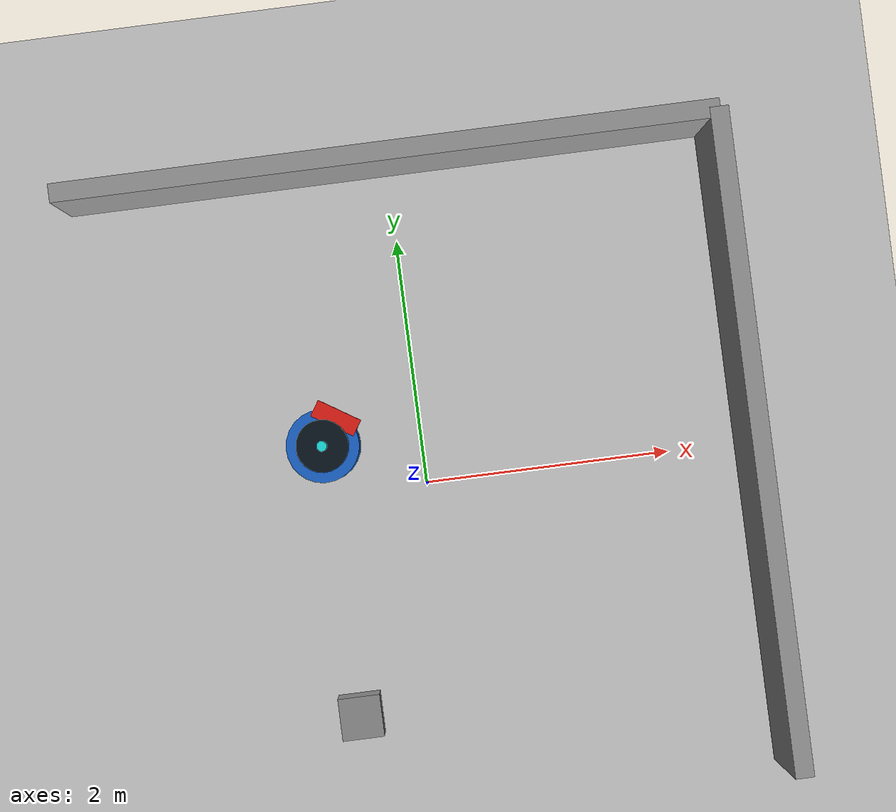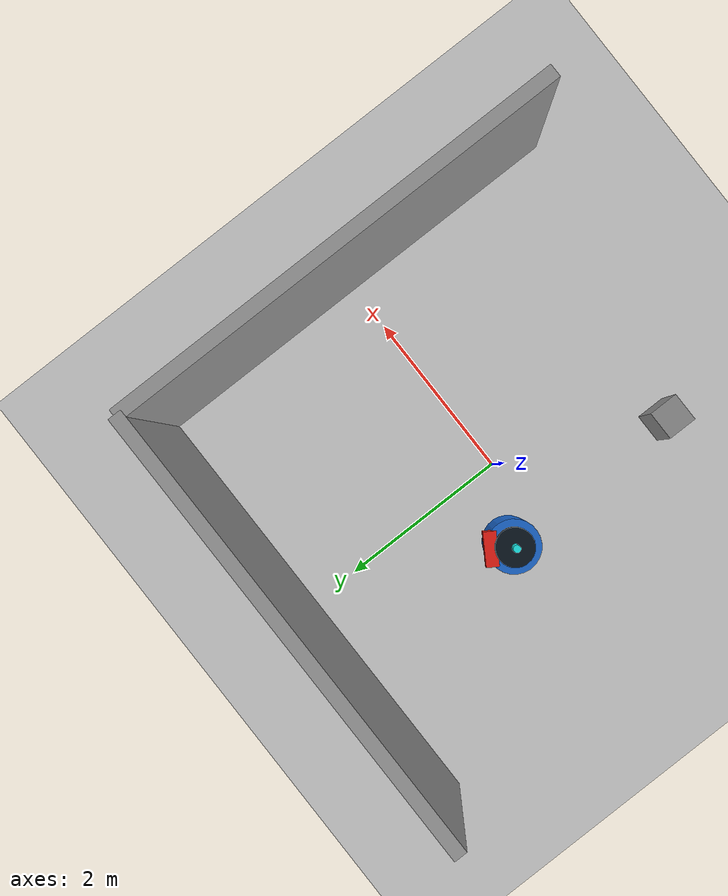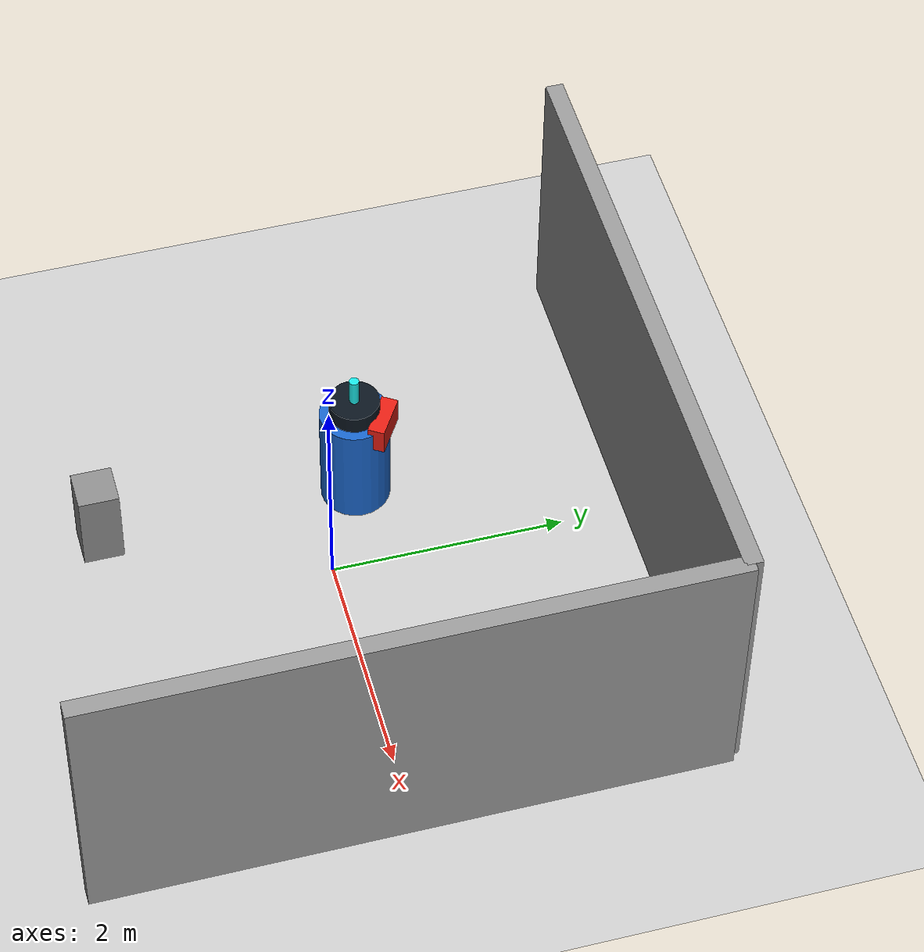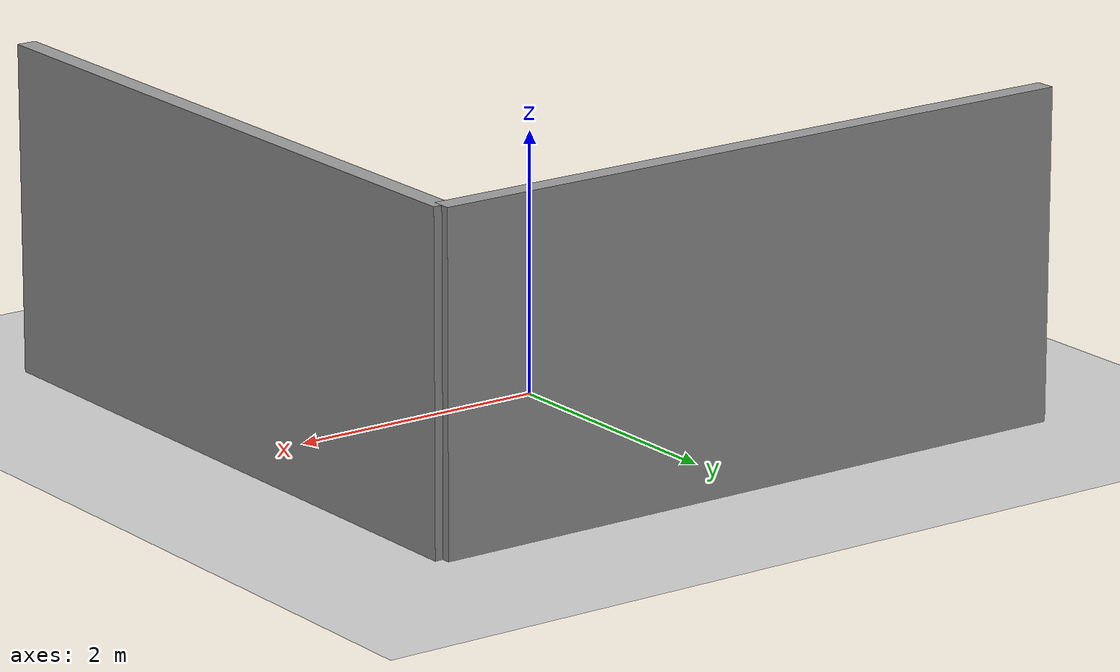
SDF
<sdf version="1.7">
 <world name="default">
  <plugin name="socnav_plugin" filename="libSocNavPlugin.so">
   <robot_name>robot</robot_name>
   <trajectory_file>/home/hunav_gz_classic_ws/SocNav3_trajectories/src6/000003886.json</trajectory_file>
   <human_slots>2</human_slots>
   <goal_angle_mesh>
    <angle_threshold>0.119449887074</angle_threshold>
    <uri>/home/hunav_gz_classic_ws/src/socnav_gazebo_reproducer/meshes/000003886_goal_angle_00.stl</uri>
   </goal_angle_mesh>
  </plugin>
  <light name="sun" type="directional">
   <pose>0 0 10 0 -0 0</pose>
   <diffuse>0.8 0.8 0.8 1</diffuse>
   <specular>0.2 0.2 0.2 1</specular>
   <attenuation>
    <range>1000</range>
    <constant>0.9</constant>
    <linear>0.01</linear>
    <quadratic>0.001</quadratic>
   </attenuation>
   <direction>-0.5 0.1 -0.9</direction>
   <spot><inner_angle>0</inner_angle><outer_angle>0</outer_angle><falloff>0</falloff></spot>
  </light>
  <model name="ground_plane">
   <static>1</static>
   <link name="link">
    <collision name="collision">
     <geometry><plane><normal>0 0 1</normal><size>100 100</size></plane></geometry>
     <surface><friction><ode><mu>100</mu><mu2>50</mu2></ode></friction></surface>
    </collision>
    <visual name="visual">
     <cast_shadows>0</cast_shadows>
     <geometry><plane><normal>0 0 1</normal><size>100 100</size></plane></geometry>
     <material>
      <script><uri>file://media/materials/scripts/kitchen.material</uri><name>Kitchen/CounterTop_H</name></script>
     </material>
    </visual>
   </link>
  </model>
  <gravity>0 0 -9.8</gravity>
  <magnetic_field>6e-06 2.3e-05 -4.2e-05</magnetic_field>
  <atmosphere type="adiabatic"/>
  <physics type="ode">
   <max_step_size>0.001</max_step_size>
   <real_time_factor>1</real_time_factor>
   <real_time_update_rate>1000</real_time_update_rate>
  </physics>
  <scene><ambient>0.4 0.4 0.4 1</ambient><background>0.7 0.7 0.7 1</background><shadows>1</shadows></scene>
  <audio><device>default</device></audio>
  <spherical_coordinates>
   <surface_model>EARTH_WGS84</surface_model>
   <latitude_deg>0</latitude_deg>
   <longitude_deg>0</longitude_deg>
   <elevation>0</elevation>
   <heading_deg>0</heading_deg>
  </spherical_coordinates>
  <model name="robot">
   <pose>-0.8008036535926201 0.4047417846580557 0.5 0 0 1.0050125701338315</pose>
   <link name="link">
    <collision name="collision">
     <geometry><cylinder><radius>0.2970624434431056</radius><length>1.0</length></cylinder></geometry>
    </collision>
    <visual name="visual">
     <geometry><cylinder><radius>0.2970624434431056</radius><length>1.0</length></cylinder></geometry>
     <material><ambient>0.1 0.4 0.8 1</ambient><diffuse>0.1 0.4 0.8 1</diffuse></material>
    </visual>
    <visual name="robot_top">
     <pose>0 0 0.58 0 0 0</pose>
     <geometry><cylinder><radius>0.21388495927903603</radius><length>0.16</length></cylinder></geometry>
     <material><ambient>0.04 0.08 0.12 1</ambient><diffuse>0.04 0.08 0.12 1</diffuse></material>
    </visual>
    <visual name="robot_front">
     <pose>0.2495324524922087 0 0.44 0 0 0</pose>
     <geometry><box><size>0.14258997285269068 0.3802399276071752 0.24</size></box></geometry>
     <material><ambient>0.9 0.12 0.08 1</ambient><diffuse>0.9 0.12 0.08 1</diffuse></material>
    </visual>
    <visual name="robot_sensor">
     <pose>0 0 0.78 0 0 0</pose>
     <geometry><cylinder><radius>0.041588742082034794</radius><length>0.24</length></cylinder></geometry>
     <material><ambient>0.1 0.9 0.9 1</ambient><diffuse>0.1 0.9 0.9 1</diffuse></material>
    </visual>
   </link>
  </model>
  <model name="static_object_1">
   <static>true</static>
   <pose>-0.7770650130246752 -1.8228442102579838 0.375 0 0 0</pose>
   <link name="link">
    <collision name="collision">
     <geometry><box><size>0.3432989692771744 0.3432989692771744 0.75</size></box></geometry>
    </collision>
    <visual name="visual">
     <geometry><box><size>0.3432989692771744 0.3432989692771744 0.75</size></box></geometry>
     <material><ambient>0.55 0.55 0.55 1</ambient><diffuse>0.55 0.55 0.55 1</diffuse></material>
    </visual>
   </link>
  </model>
  <model name="simple_world_test">
   <link name="Wall_0">
    <collision name="Wall_0_Collision">
     <geometry><box><size>5.269905649572832 0.15 2.5</size></box></geometry>
     <pose>0 0 1.25 0 -0 0</pose>
    </collision>
    <visual name="Wall_0_Visual">
     <pose>0 0 1.25 0 -0 0</pose>
     <geometry><box><size>5.269905649572832 0.15 2.5</size></box></geometry>
     <material>
      <script><uri>file://media/materials/scripts/gazebo.material</uri><name>Gazebo/Grey</name></script>
      <ambient>1 1 1 1</ambient>
     </material>
     <meta><layer>0</layer></meta>
    </visual>
    <pose>2.624952824786416 0.0 0 0 -0 -1.5707963267948966</pose>
   </link>
   <link name="Wall_1">
    <collision name="Wall_1_Collision">
     <geometry><box><size>5.269905649572832 0.15 2.5</size></box></geometry>
     <pose>0 0 1.25 0 -0 0</pose>
    </collision>
    <visual name="Wall_1_Visual">
     <pose>0 0 1.25 0 -0 0</pose>
     <geometry><box><size>5.269905649572832 0.15 2.5</size></box></geometry>
     <material>
      <script><uri>file://media/materials/scripts/gazebo.material</uri><name>Gazebo/Grey</name></script>
      <ambient>1 1 1 1</ambient>
     </material>
     <meta><layer>0</layer></meta>
    </visual>
    <pose>0.0 2.624952824786416 0 0 -0 0.0</pose>
   </link>
   <static>1</static>
  </model>
 </world>
</sdf>
